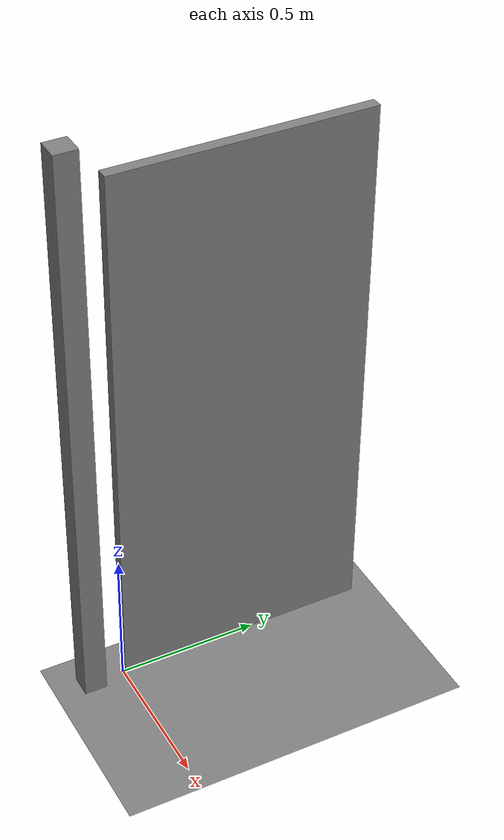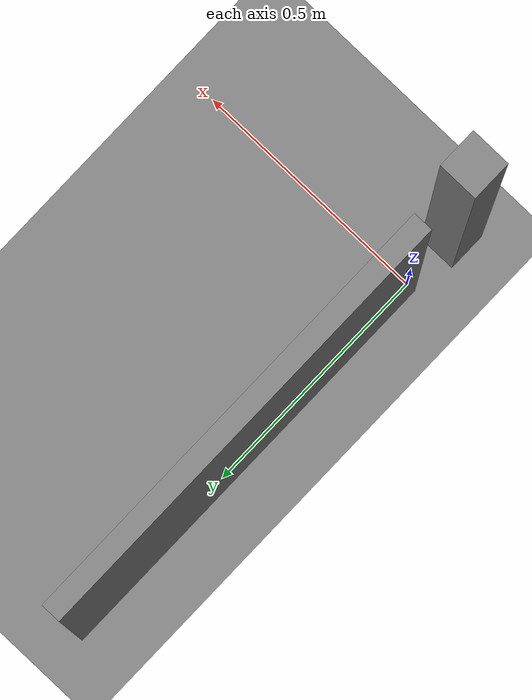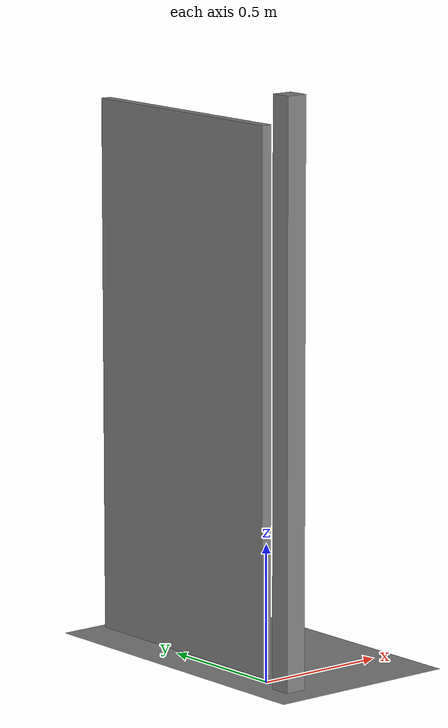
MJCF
<mujoco model="door_fixture">
  <compiler angle="radian"/>
  <option timestep="0.002"/>
  <worldbody>
    <geom name="floor" type="plane" size="5 5 0.1"/>
    <geom name="frame_post" type="box" pos="0 -0.12 1.05" size="0.04 0.04 1.05"/>
    <body name="door" pos="0 0 1.0">
      <joint name="hinge" type="hinge" axis="0 0 1" pos="0 0 0" stiffness="40" springref="-0.1" damping="25" range="0 2.1" limited="true"/>
      <geom name="door_panel" type="box" pos="0 0.45 0" size="0.02 0.45 0.98" mass="20"/>
    </body>
  </worldbody>
  <keyframe>
    <key name="start" qpos="1.2"/>
  </keyframe>
</mujoco>
